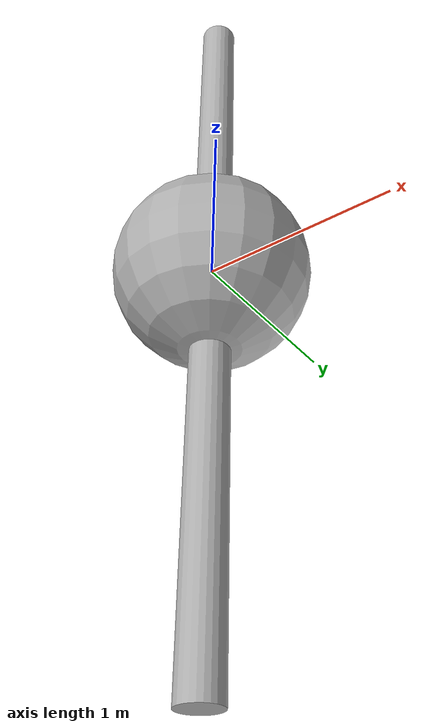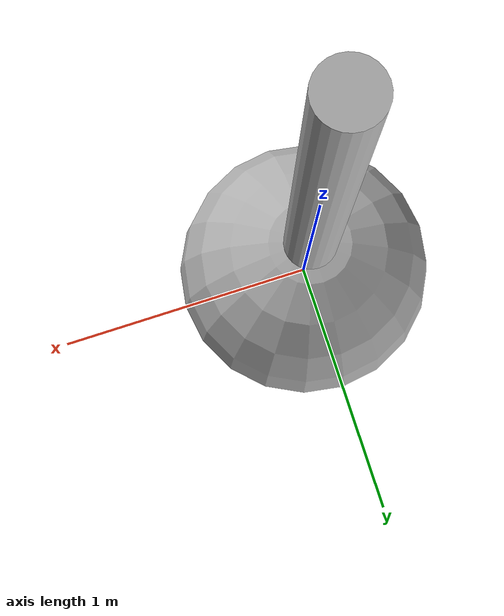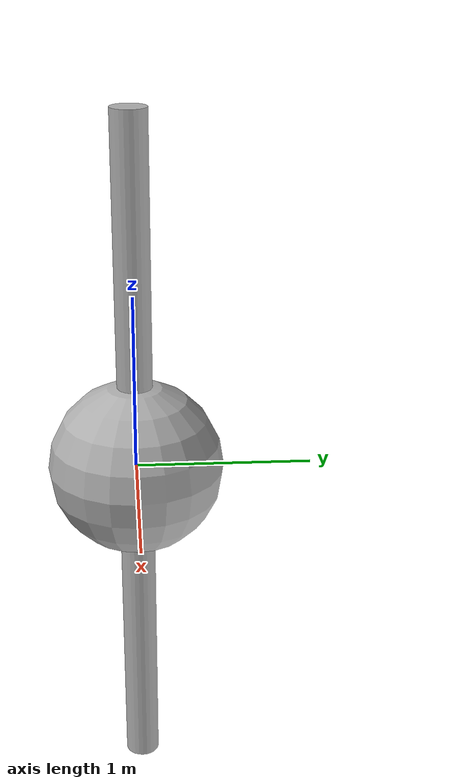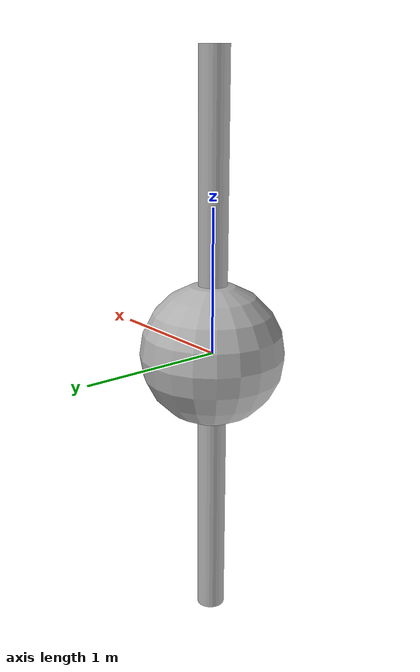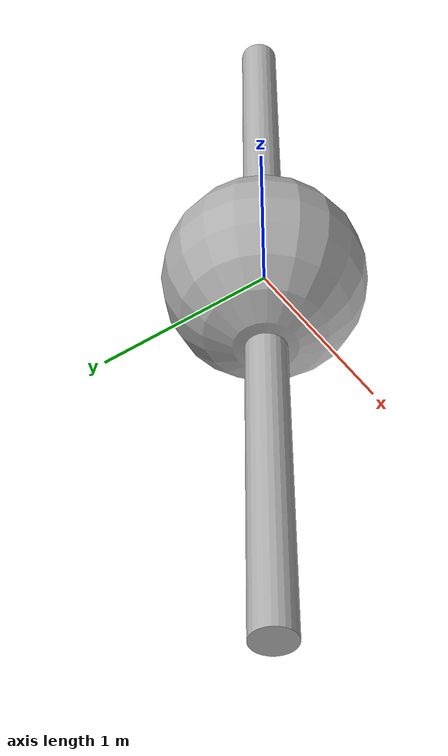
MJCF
<mujoco>
  <option gravity="0 0 -9.81" />
  <worldbody>
    <body name="object_1" pos="0 0 0">
      <geom type="sphere" size="0.5" density="5" rgba="0.7 0.7 0.7 1" />
      <joint name="object_1_joint" type="free" />
    </body>
    <body name="object_2" pos="0 0 0">
      <geom type="cylinder" size="0.1 2" density="3" rgba="0.7 0.7 0.7 1" />
      <joint name="object_2_joint" type="hinge" axis="0 0 1" />
    </body>
    <body name="object_3" pos="0 0 -10">
      <geom type="plane" size="30 30 0.1" rgba="0.7 0.7 0.7 1" friction="1 1 1" />
    </body>
  </worldbody>
<joint name="joint_object_1_object_2" type="revolute" body1="object_1" body2="object_2" /></mujoco>
